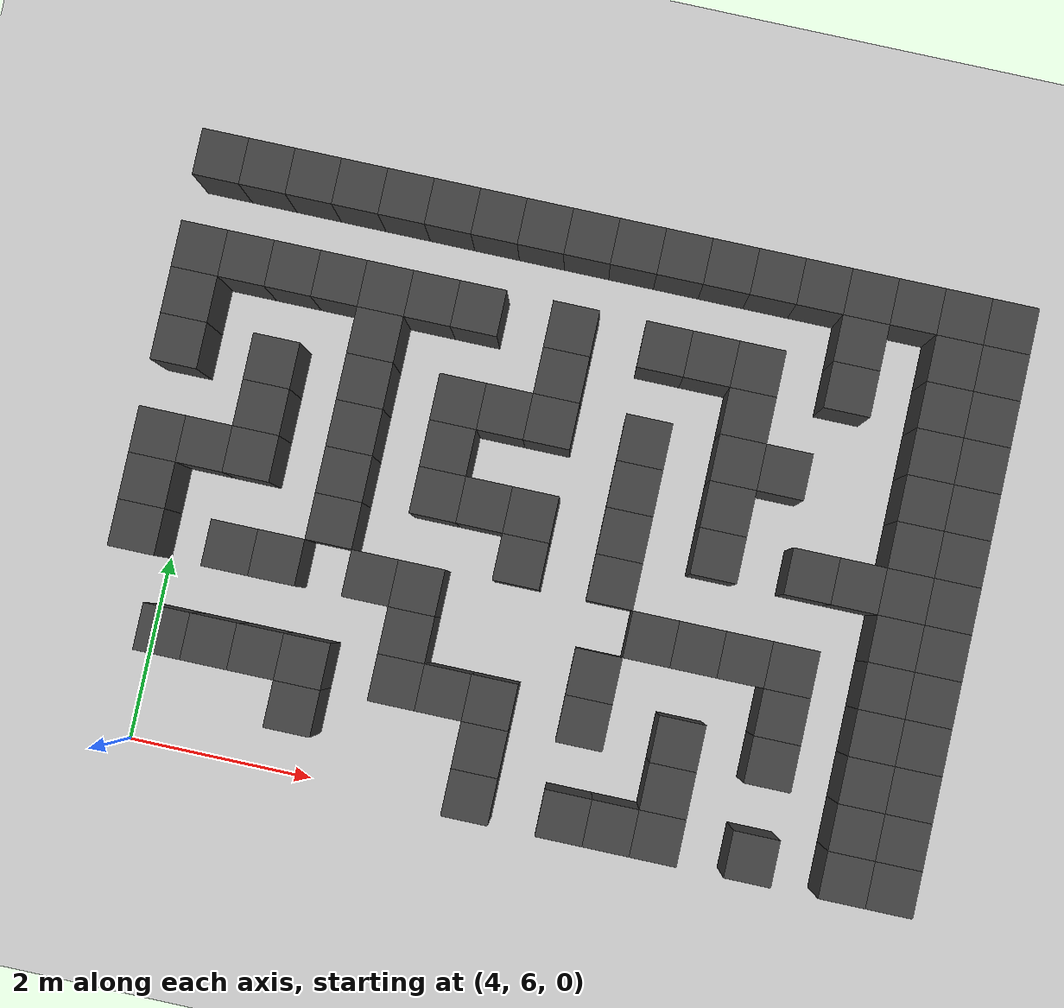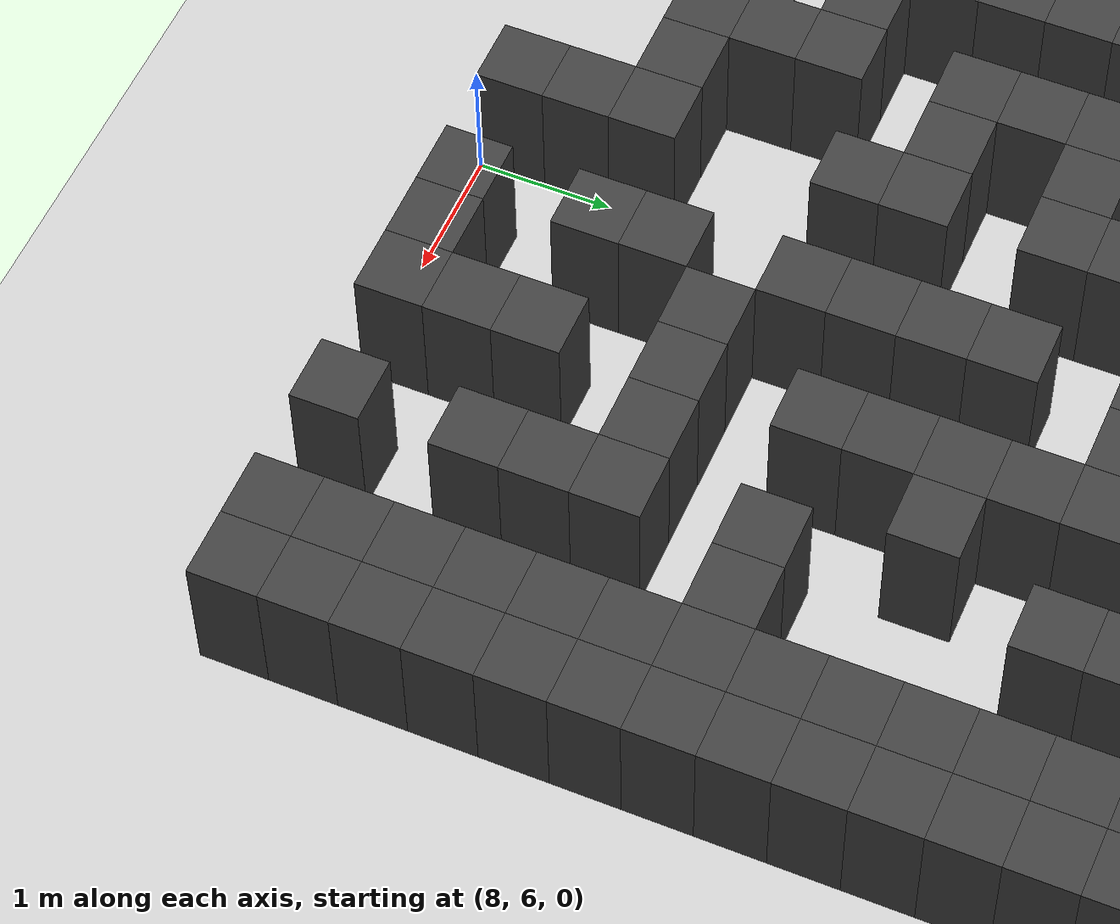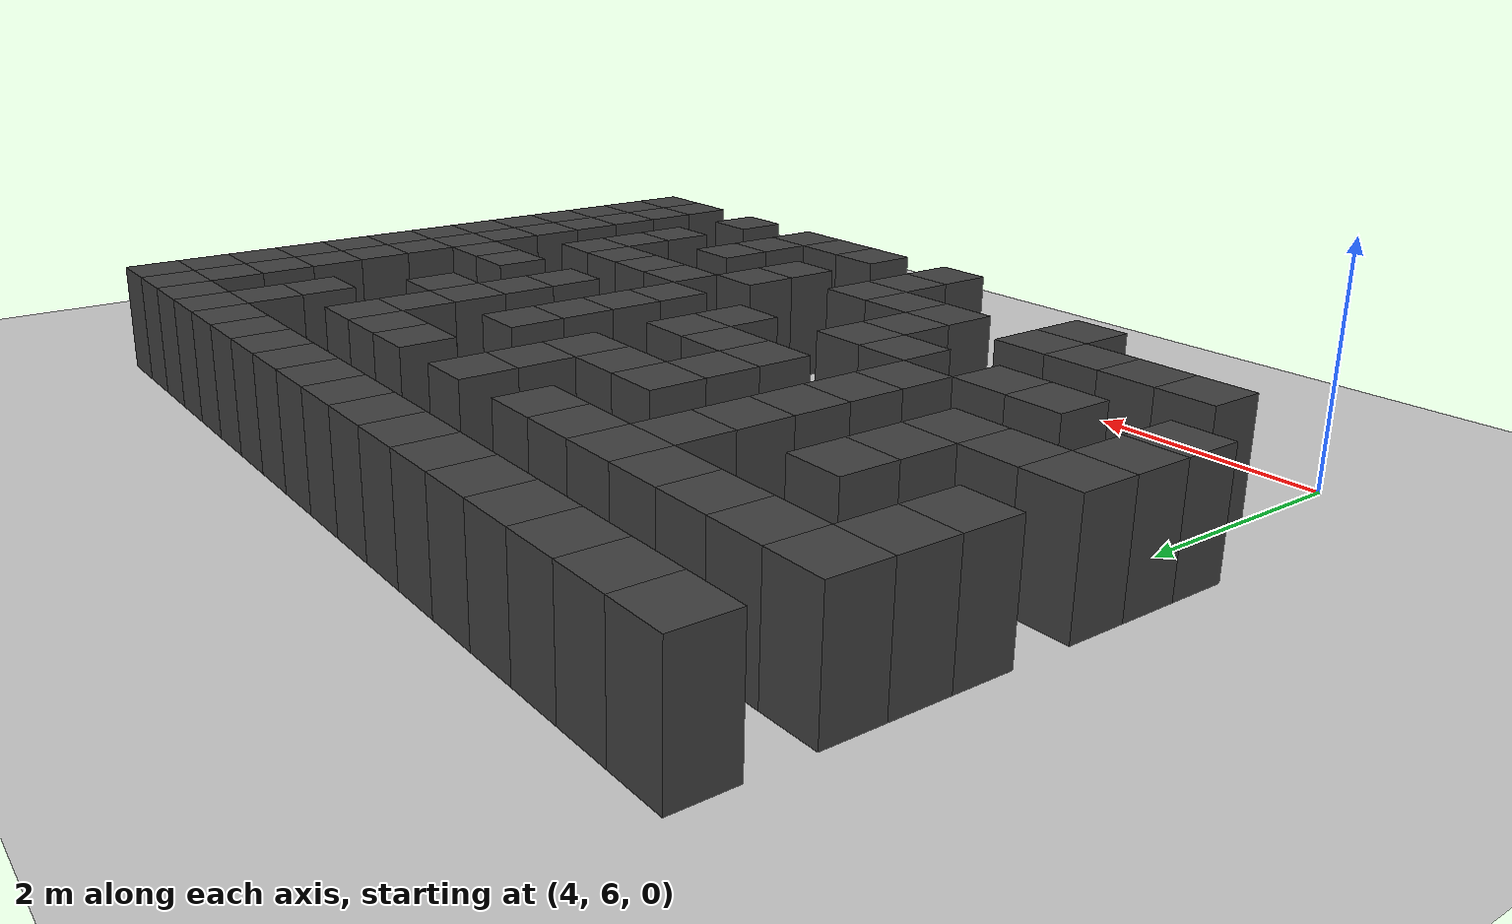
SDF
<sdf version="1.7">
 <world name="map_18553">
  <model name="ground_plane">
   <static>true</static>
   <link name="link">
    <collision name="collision">
     <geometry><plane><normal>0 0 1</normal><size>200 200</size></plane></geometry>
    </collision>
    <visual name="visual">
     <geometry><plane><normal>0 0 1</normal><size>200 200</size></plane></geometry>
     <material><ambient>0.8 0.8 0.8 1</ambient><diffuse>0.8 0.8 0.8 1</diffuse></material>
    </visual>
   </link>
  </model>
  <model name="maze_environment">
   <static>true</static>
   <link name="wall_32">
    <pose>3.750 12.250 0.500 0 0 0</pose>
    <collision name="col"><geometry><box><size>0.5 0.5 1.0</size></box></geometry></collision>
    <visual name="vis">
     <geometry><box><size>0.5 0.5 1.0</size></box></geometry>
     <material><ambient>0.15 0.15 0.15 1</ambient><diffuse>0.25 0.25 0.25 1</diffuse></material>
    </visual>
   </link>
   <link name="wall_33">
    <pose>4.250 12.250 0.500 0 0 0</pose>
    <collision name="col"><geometry><box><size>0.5 0.5 1.0</size></box></geometry></collision>
    <visual name="vis">
     <geometry><box><size>0.5 0.5 1.0</size></box></geometry>
     <material><ambient>0.15 0.15 0.15 1</ambient><diffuse>0.25 0.25 0.25 1</diffuse></material>
    </visual>
   </link>
   <link name="wall_34">
    <pose>4.750 12.250 0.500 0 0 0</pose>
    <collision name="col"><geometry><box><size>0.5 0.5 1.0</size></box></geometry></collision>
    <visual name="vis">
     <geometry><box><size>0.5 0.5 1.0</size></box></geometry>
     <material><ambient>0.15 0.15 0.15 1</ambient><diffuse>0.25 0.25 0.25 1</diffuse></material>
    </visual>
   </link>
   <link name="wall_35">
    <pose>5.250 12.250 0.500 0 0 0</pose>
    <collision name="col"><geometry><box><size>0.5 0.5 1.0</size></box></geometry></collision>
    <visual name="vis">
     <geometry><box><size>0.5 0.5 1.0</size></box></geometry>
     <material><ambient>0.15 0.15 0.15 1</ambient><diffuse>0.25 0.25 0.25 1</diffuse></material>
    </visual>
   </link>
   <link name="wall_36">
    <pose>5.750 12.250 0.500 0 0 0</pose>
    <collision name="col"><geometry><box><size>0.5 0.5 1.0</size></box></geometry></collision>
    <visual name="vis">
     <geometry><box><size>0.5 0.5 1.0</size></box></geometry>
     <material><ambient>0.15 0.15 0.15 1</ambient><diffuse>0.25 0.25 0.25 1</diffuse></material>
    </visual>
   </link>
   <link name="wall_37">
    <pose>6.250 12.250 0.500 0 0 0</pose>
    <collision name="col"><geometry><box><size>0.5 0.5 1.0</size></box></geometry></collision>
    <visual name="vis">
     <geometry><box><size>0.5 0.5 1.0</size></box></geometry>
     <material><ambient>0.15 0.15 0.15 1</ambient><diffuse>0.25 0.25 0.25 1</diffuse></material>
    </visual>
   </link>
   <link name="wall_38">
    <pose>6.750 12.250 0.500 0 0 0</pose>
    <collision name="col"><geometry><box><size>0.5 0.5 1.0</size></box></geometry></collision>
    <visual name="vis">
     <geometry><box><size>0.5 0.5 1.0</size></box></geometry>
     <material><ambient>0.15 0.15 0.15 1</ambient><diffuse>0.25 0.25 0.25 1</diffuse></material>
    </visual>
   </link>
   <link name="wall_39">
    <pose>7.250 12.250 0.500 0 0 0</pose>
    <collision name="col"><geometry><box><size>0.5 0.5 1.0</size></box></geometry></collision>
    <visual name="vis">
     <geometry><box><size>0.5 0.5 1.0</size></box></geometry>
     <material><ambient>0.15 0.15 0.15 1</ambient><diffuse>0.25 0.25 0.25 1</diffuse></material>
    </visual>
   </link>
   <link name="wall_40">
    <pose>7.750 12.250 0.500 0 0 0</pose>
    <collision name="col"><geometry><box><size>0.5 0.5 1.0</size></box></geometry></collision>
    <visual name="vis">
     <geometry><box><size>0.5 0.5 1.0</size></box></geometry>
     <material><ambient>0.15 0.15 0.15 1</ambient><diffuse>0.25 0.25 0.25 1</diffuse></material>
    </visual>
   </link>
   <link name="wall_41">
    <pose>8.250 12.250 0.500 0 0 0</pose>
    <collision name="col"><geometry><box><size>0.5 0.5 1.0</size></box></geometry></collision>
    <visual name="vis">
     <geometry><box><size>0.5 0.5 1.0</size></box></geometry>
     <material><ambient>0.15 0.15 0.15 1</ambient><diffuse>0.25 0.25 0.25 1</diffuse></material>
    </visual>
   </link>
   <link name="wall_42">
    <pose>8.750 12.250 0.500 0 0 0</pose>
    <collision name="col"><geometry><box><size>0.5 0.5 1.0</size></box></geometry></collision>
    <visual name="vis">
     <geometry><box><size>0.5 0.5 1.0</size></box></geometry>
     <material><ambient>0.15 0.15 0.15 1</ambient><diffuse>0.25 0.25 0.25 1</diffuse></material>
    </visual>
   </link>
   <link name="wall_43">
    <pose>9.250 12.250 0.500 0 0 0</pose>
    <collision name="col"><geometry><box><size>0.5 0.5 1.0</size></box></geometry></collision>
    <visual name="vis">
     <geometry><box><size>0.5 0.5 1.0</size></box></geometry>
     <material><ambient>0.15 0.15 0.15 1</ambient><diffuse>0.25 0.25 0.25 1</diffuse></material>
    </visual>
   </link>
   <link name="wall_44">
    <pose>9.750 12.250 0.500 0 0 0</pose>
    <collision name="col"><geometry><box><size>0.5 0.5 1.0</size></box></geometry></collision>
    <visual name="vis">
     <geometry><box><size>0.5 0.5 1.0</size></box></geometry>
     <material><ambient>0.15 0.15 0.15 1</ambient><diffuse>0.25 0.25 0.25 1</diffuse></material>
    </visual>
   </link>
   <link name="wall_45">
    <pose>10.250 12.250 0.500 0 0 0</pose>
    <collision name="col"><geometry><box><size>0.5 0.5 1.0</size></box></geometry></collision>
    <visual name="vis">
     <geometry><box><size>0.5 0.5 1.0</size></box></geometry>
     <material><ambient>0.15 0.15 0.15 1</ambient><diffuse>0.25 0.25 0.25 1</diffuse></material>
    </visual>
   </link>
   <link name="wall_46">
    <pose>10.750 12.250 0.500 0 0 0</pose>
    <collision name="col"><geometry><box><size>0.5 0.5 1.0</size></box></geometry></collision>
    <visual name="vis">
     <geometry><box><size>0.5 0.5 1.0</size></box></geometry>
     <material><ambient>0.15 0.15 0.15 1</ambient><diffuse>0.25 0.25 0.25 1</diffuse></material>
    </visual>
   </link>
   <link name="wall_47">
    <pose>11.250 12.250 0.500 0 0 0</pose>
    <collision name="col"><geometry><box><size>0.5 0.5 1.0</size></box></geometry></collision>
    <visual name="vis">
     <geometry><box><size>0.5 0.5 1.0</size></box></geometry>
     <material><ambient>0.15 0.15 0.15 1</ambient><diffuse>0.25 0.25 0.25 1</diffuse></material>
    </visual>
   </link>
   <link name="wall_48">
    <pose>11.750 12.250 0.500 0 0 0</pose>
    <collision name="col"><geometry><box><size>0.5 0.5 1.0</size></box></geometry></collision>
    <visual name="vis">
     <geometry><box><size>0.5 0.5 1.0</size></box></geometry>
     <material><ambient>0.15 0.15 0.15 1</ambient><diffuse>0.25 0.25 0.25 1</diffuse></material>
    </visual>
   </link>
   <link name="wall_49">
    <pose>12.250 12.250 0.500 0 0 0</pose>
    <collision name="col"><geometry><box><size>0.5 0.5 1.0</size></box></geometry></collision>
    <visual name="vis">
     <geometry><box><size>0.5 0.5 1.0</size></box></geometry>
     <material><ambient>0.15 0.15 0.15 1</ambient><diffuse>0.25 0.25 0.25 1</diffuse></material>
    </visual>
   </link>
   <link name="wall_55">
    <pose>10.750 11.750 0.500 0 0 0</pose>
    <collision name="col"><geometry><box><size>0.5 0.5 1.0</size></box></geometry></collision>
    <visual name="vis">
     <geometry><box><size>0.5 0.5 1.0</size></box></geometry>
     <material><ambient>0.15 0.15 0.15 1</ambient><diffuse>0.25 0.25 0.25 1</diffuse></material>
    </visual>
   </link>
   <link name="wall_56">
    <pose>11.750 11.750 0.500 0 0 0</pose>
    <collision name="col"><geometry><box><size>0.5 0.5 1.0</size></box></geometry></collision>
    <visual name="vis">
     <geometry><box><size>0.5 0.5 1.0</size></box></geometry>
     <material><ambient>0.15 0.15 0.15 1</ambient><diffuse>0.25 0.25 0.25 1</diffuse></material>
    </visual>
   </link>
   <link name="wall_57">
    <pose>12.250 11.750 0.500 0 0 0</pose>
    <collision name="col"><geometry><box><size>0.5 0.5 1.0</size></box></geometry></collision>
    <visual name="vis">
     <geometry><box><size>0.5 0.5 1.0</size></box></geometry>
     <material><ambient>0.15 0.15 0.15 1</ambient><diffuse>0.25 0.25 0.25 1</diffuse></material>
    </visual>
   </link>
   <link name="wall_79">
    <pose>3.750 11.250 0.500 0 0 0</pose>
    <collision name="col"><geometry><box><size>0.5 0.5 1.0</size></box></geometry></collision>
    <visual name="vis">
     <geometry><box><size>0.5 0.5 1.0</size></box></geometry>
     <material><ambient>0.15 0.15 0.15 1</ambient><diffuse>0.25 0.25 0.25 1</diffuse></material>
    </visual>
   </link>
   <link name="wall_80">
    <pose>4.250 11.250 0.500 0 0 0</pose>
    <collision name="col"><geometry><box><size>0.5 0.5 1.0</size></box></geometry></collision>
    <visual name="vis">
     <geometry><box><size>0.5 0.5 1.0</size></box></geometry>
     <material><ambient>0.15 0.15 0.15 1</ambient><diffuse>0.25 0.25 0.25 1</diffuse></material>
    </visual>
   </link>
   <link name="wall_81">
    <pose>4.750 11.250 0.500 0 0 0</pose>
    <collision name="col"><geometry><box><size>0.5 0.5 1.0</size></box></geometry></collision>
    <visual name="vis">
     <geometry><box><size>0.5 0.5 1.0</size></box></geometry>
     <material><ambient>0.15 0.15 0.15 1</ambient><diffuse>0.25 0.25 0.25 1</diffuse></material>
    </visual>
   </link>
   <link name="wall_82">
    <pose>5.250 11.250 0.500 0 0 0</pose>
    <collision name="col"><geometry><box><size>0.5 0.5 1.0</size></box></geometry></collision>
    <visual name="vis">
     <geometry><box><size>0.5 0.5 1.0</size></box></geometry>
     <material><ambient>0.15 0.15 0.15 1</ambient><diffuse>0.25 0.25 0.25 1</diffuse></material>
    </visual>
   </link>
   <link name="wall_83">
    <pose>5.750 11.250 0.500 0 0 0</pose>
    <collision name="col"><geometry><box><size>0.5 0.5 1.0</size></box></geometry></collision>
    <visual name="vis">
     <geometry><box><size>0.5 0.5 1.0</size></box></geometry>
     <material><ambient>0.15 0.15 0.15 1</ambient><diffuse>0.25 0.25 0.25 1</diffuse></material>
    </visual>
   </link>
   <link name="wall_84">
    <pose>6.250 11.250 0.500 0 0 0</pose>
    <collision name="col"><geometry><box><size>0.5 0.5 1.0</size></box></geometry></collision>
    <visual name="vis">
     <geometry><box><size>0.5 0.5 1.0</size></box></geometry>
     <material><ambient>0.15 0.15 0.15 1</ambient><diffuse>0.25 0.25 0.25 1</diffuse></material>
    </visual>
   </link>
   <link name="wall_85">
    <pose>6.750 11.250 0.500 0 0 0</pose>
    <collision name="col"><geometry><box><size>0.5 0.5 1.0</size></box></geometry></collision>
    <visual name="vis">
     <geometry><box><size>0.5 0.5 1.0</size></box></geometry>
     <material><ambient>0.15 0.15 0.15 1</ambient><diffuse>0.25 0.25 0.25 1</diffuse></material>
    </visual>
   </link>
   <link name="wall_86">
    <pose>7.750 11.250 0.500 0 0 0</pose>
    <collision name="col"><geometry><box><size>0.5 0.5 1.0</size></box></geometry></collision>
    <visual name="vis">
     <geometry><box><size>0.5 0.5 1.0</size></box></geometry>
     <material><ambient>0.15 0.15 0.15 1</ambient><diffuse>0.25 0.25 0.25 1</diffuse></material>
    </visual>
   </link>
   <link name="wall_87">
    <pose>8.750 11.250 0.500 0 0 0</pose>
    <collision name="col"><geometry><box><size>0.5 0.5 1.0</size></box></geometry></collision>
    <visual name="vis">
     <geometry><box><size>0.5 0.5 1.0</size></box></geometry>
     <material><ambient>0.15 0.15 0.15 1</ambient><diffuse>0.25 0.25 0.25 1</diffuse></material>
    </visual>
   </link>
   <link name="wall_88">
    <pose>9.250 11.250 0.500 0 0 0</pose>
    <collision name="col"><geometry><box><size>0.5 0.5 1.0</size></box></geometry></collision>
    <visual name="vis">
     <geometry><box><size>0.5 0.5 1.0</size></box></geometry>
     <material><ambient>0.15 0.15 0.15 1</ambient><diffuse>0.25 0.25 0.25 1</diffuse></material>
    </visual>
   </link>
   <link name="wall_89">
    <pose>9.750 11.250 0.500 0 0 0</pose>
    <collision name="col"><geometry><box><size>0.5 0.5 1.0</size></box></geometry></collision>
    <visual name="vis">
     <geometry><box><size>0.5 0.5 1.0</size></box></geometry>
     <material><ambient>0.15 0.15 0.15 1</ambient><diffuse>0.25 0.25 0.25 1</diffuse></material>
    </visual>
   </link>
   <link name="wall_90">
    <pose>10.750 11.250 0.500 0 0 0</pose>
    <collision name="col"><geometry><box><size>0.5 0.5 1.0</size></box></geometry></collision>
    <visual name="vis">
     <geometry><box><size>0.5 0.5 1.0</size></box></geometry>
     <material><ambient>0.15 0.15 0.15 1</ambient><diffuse>0.25 0.25 0.25 1</diffuse></material>
    </visual>
   </link>
   <link name="wall_91">
    <pose>11.750 11.250 0.500 0 0 0</pose>
    <collision name="col"><geometry><box><size>0.5 0.5 1.0</size></box></geometry></collision>
    <visual name="vis">
     <geometry><box><size>0.5 0.5 1.0</size></box></geometry>
     <material><ambient>0.15 0.15 0.15 1</ambient><diffuse>0.25 0.25 0.25 1</diffuse></material>
    </visual>
   </link>
   <link name="wall_92">
    <pose>12.250 11.250 0.500 0 0 0</pose>
    <collision name="col"><geometry><box><size>0.5 0.5 1.0</size></box></geometry></collision>
    <visual name="vis">
     <geometry><box><size>0.5 0.5 1.0</size></box></geometry>
     <material><ambient>0.15 0.15 0.15 1</ambient><diffuse>0.25 0.25 0.25 1</diffuse></material>
    </visual>
   </link>
   <link name="wall_103">
    <pose>3.750 10.750 0.500 0 0 0</pose>
    <collision name="col"><geometry><box><size>0.5 0.5 1.0</size></box></geometry></collision>
    <visual name="vis">
     <geometry><box><size>0.5 0.5 1.0</size></box></geometry>
     <material><ambient>0.15 0.15 0.15 1</ambient><diffuse>0.25 0.25 0.25 1</diffuse></material>
    </visual>
   </link>
   <link name="wall_104">
    <pose>5.750 10.750 0.500 0 0 0</pose>
    <collision name="col"><geometry><box><size>0.5 0.5 1.0</size></box></geometry></collision>
    <visual name="vis">
     <geometry><box><size>0.5 0.5 1.0</size></box></geometry>
     <material><ambient>0.15 0.15 0.15 1</ambient><diffuse>0.25 0.25 0.25 1</diffuse></material>
    </visual>
   </link>
   <link name="wall_105">
    <pose>7.750 10.750 0.500 0 0 0</pose>
    <collision name="col"><geometry><box><size>0.5 0.5 1.0</size></box></geometry></collision>
    <visual name="vis">
     <geometry><box><size>0.5 0.5 1.0</size></box></geometry>
     <material><ambient>0.15 0.15 0.15 1</ambient><diffuse>0.25 0.25 0.25 1</diffuse></material>
    </visual>
   </link>
   <link name="wall_106">
    <pose>9.750 10.750 0.500 0 0 0</pose>
    <collision name="col"><geometry><box><size>0.5 0.5 1.0</size></box></geometry></collision>
    <visual name="vis">
     <geometry><box><size>0.5 0.5 1.0</size></box></geometry>
     <material><ambient>0.15 0.15 0.15 1</ambient><diffuse>0.25 0.25 0.25 1</diffuse></material>
    </visual>
   </link>
   <link name="wall_107">
    <pose>11.750 10.750 0.500 0 0 0</pose>
    <collision name="col"><geometry><box><size>0.5 0.5 1.0</size></box></geometry></collision>
    <visual name="vis">
     <geometry><box><size>0.5 0.5 1.0</size></box></geometry>
     <material><ambient>0.15 0.15 0.15 1</ambient><diffuse>0.25 0.25 0.25 1</diffuse></material>
    </visual>
   </link>
   <link name="wall_108">
    <pose>12.250 10.750 0.500 0 0 0</pose>
    <collision name="col"><geometry><box><size>0.5 0.5 1.0</size></box></geometry></collision>
    <visual name="vis">
     <geometry><box><size>0.5 0.5 1.0</size></box></geometry>
     <material><ambient>0.15 0.15 0.15 1</ambient><diffuse>0.25 0.25 0.25 1</diffuse></material>
    </visual>
   </link>
   <link name="wall_131">
    <pose>3.750 10.250 0.500 0 0 0</pose>
    <collision name="col"><geometry><box><size>0.5 0.5 1.0</size></box></geometry></collision>
    <visual name="vis">
     <geometry><box><size>0.5 0.5 1.0</size></box></geometry>
     <material><ambient>0.15 0.15 0.15 1</ambient><diffuse>0.25 0.25 0.25 1</diffuse></material>
    </visual>
   </link>
   <link name="wall_132">
    <pose>4.750 10.250 0.500 0 0 0</pose>
    <collision name="col"><geometry><box><size>0.5 0.5 1.0</size></box></geometry></collision>
    <visual name="vis">
     <geometry><box><size>0.5 0.5 1.0</size></box></geometry>
     <material><ambient>0.15 0.15 0.15 1</ambient><diffuse>0.25 0.25 0.25 1</diffuse></material>
    </visual>
   </link>
   <link name="wall_133">
    <pose>5.750 10.250 0.500 0 0 0</pose>
    <collision name="col"><geometry><box><size>0.5 0.5 1.0</size></box></geometry></collision>
    <visual name="vis">
     <geometry><box><size>0.5 0.5 1.0</size></box></geometry>
     <material><ambient>0.15 0.15 0.15 1</ambient><diffuse>0.25 0.25 0.25 1</diffuse></material>
    </visual>
   </link>
   <link name="wall_134">
    <pose>6.750 10.250 0.500 0 0 0</pose>
    <collision name="col"><geometry><box><size>0.5 0.5 1.0</size></box></geometry></collision>
    <visual name="vis">
     <geometry><box><size>0.5 0.5 1.0</size></box></geometry>
     <material><ambient>0.15 0.15 0.15 1</ambient><diffuse>0.25 0.25 0.25 1</diffuse></material>
    </visual>
   </link>
   <link name="wall_135">
    <pose>7.250 10.250 0.500 0 0 0</pose>
    <collision name="col"><geometry><box><size>0.5 0.5 1.0</size></box></geometry></collision>
    <visual name="vis">
     <geometry><box><size>0.5 0.5 1.0</size></box></geometry>
     <material><ambient>0.15 0.15 0.15 1</ambient><diffuse>0.25 0.25 0.25 1</diffuse></material>
    </visual>
   </link>
   <link name="wall_136">
    <pose>7.750 10.250 0.500 0 0 0</pose>
    <collision name="col"><geometry><box><size>0.5 0.5 1.0</size></box></geometry></collision>
    <visual name="vis">
     <geometry><box><size>0.5 0.5 1.0</size></box></geometry>
     <material><ambient>0.15 0.15 0.15 1</ambient><diffuse>0.25 0.25 0.25 1</diffuse></material>
    </visual>
   </link>
   <link name="wall_137">
    <pose>8.750 10.250 0.500 0 0 0</pose>
    <collision name="col"><geometry><box><size>0.5 0.5 1.0</size></box></geometry></collision>
    <visual name="vis">
     <geometry><box><size>0.5 0.5 1.0</size></box></geometry>
     <material><ambient>0.15 0.15 0.15 1</ambient><diffuse>0.25 0.25 0.25 1</diffuse></material>
    </visual>
   </link>
   <link name="wall_138">
    <pose>9.750 10.250 0.500 0 0 0</pose>
    <collision name="col"><geometry><box><size>0.5 0.5 1.0</size></box></geometry></collision>
    <visual name="vis">
     <geometry><box><size>0.5 0.5 1.0</size></box></geometry>
     <material><ambient>0.15 0.15 0.15 1</ambient><diffuse>0.25 0.25 0.25 1</diffuse></material>
    </visual>
   </link>
   <link name="wall_139">
    <pose>10.250 10.250 0.500 0 0 0</pose>
    <collision name="col"><geometry><box><size>0.5 0.5 1.0</size></box></geometry></collision>
    <visual name="vis">
     <geometry><box><size>0.5 0.5 1.0</size></box></geometry>
     <material><ambient>0.15 0.15 0.15 1</ambient><diffuse>0.25 0.25 0.25 1</diffuse></material>
    </visual>
   </link>
   <link name="wall_140">
    <pose>11.750 10.250 0.500 0 0 0</pose>
    <collision name="col"><geometry><box><size>0.5 0.5 1.0</size></box></geometry></collision>
    <visual name="vis">
     <geometry><box><size>0.5 0.5 1.0</size></box></geometry>
     <material><ambient>0.15 0.15 0.15 1</ambient><diffuse>0.25 0.25 0.25 1</diffuse></material>
    </visual>
   </link>
   <link name="wall_141">
    <pose>12.250 10.250 0.500 0 0 0</pose>
    <collision name="col"><geometry><box><size>0.5 0.5 1.0</size></box></geometry></collision>
    <visual name="vis">
     <geometry><box><size>0.5 0.5 1.0</size></box></geometry>
     <material><ambient>0.15 0.15 0.15 1</ambient><diffuse>0.25 0.25 0.25 1</diffuse></material>
    </visual>
   </link>
   <link name="wall_155">
    <pose>4.750 9.750 0.500 0 0 0</pose>
    <collision name="col"><geometry><box><size>0.5 0.5 1.0</size></box></geometry></collision>
    <visual name="vis">
     <geometry><box><size>0.5 0.5 1.0</size></box></geometry>
     <material><ambient>0.15 0.15 0.15 1</ambient><diffuse>0.25 0.25 0.25 1</diffuse></material>
    </visual>
   </link>
   <link name="wall_156">
    <pose>5.750 9.750 0.500 0 0 0</pose>
    <collision name="col"><geometry><box><size>0.5 0.5 1.0</size></box></geometry></collision>
    <visual name="vis">
     <geometry><box><size>0.5 0.5 1.0</size></box></geometry>
     <material><ambient>0.15 0.15 0.15 1</ambient><diffuse>0.25 0.25 0.25 1</diffuse></material>
    </visual>
   </link>
   <link name="wall_157">
    <pose>6.750 9.750 0.500 0 0 0</pose>
    <collision name="col"><geometry><box><size>0.5 0.5 1.0</size></box></geometry></collision>
    <visual name="vis">
     <geometry><box><size>0.5 0.5 1.0</size></box></geometry>
     <material><ambient>0.15 0.15 0.15 1</ambient><diffuse>0.25 0.25 0.25 1</diffuse></material>
    </visual>
   </link>
   <link name="wall_158">
    <pose>8.750 9.750 0.500 0 0 0</pose>
    <collision name="col"><geometry><box><size>0.5 0.5 1.0</size></box></geometry></collision>
    <visual name="vis">
     <geometry><box><size>0.5 0.5 1.0</size></box></geometry>
     <material><ambient>0.15 0.15 0.15 1</ambient><diffuse>0.25 0.25 0.25 1</diffuse></material>
    </visual>
   </link>
   <link name="wall_159">
    <pose>9.750 9.750 0.500 0 0 0</pose>
    <collision name="col"><geometry><box><size>0.5 0.5 1.0</size></box></geometry></collision>
    <visual name="vis">
     <geometry><box><size>0.5 0.5 1.0</size></box></geometry>
     <material><ambient>0.15 0.15 0.15 1</ambient><diffuse>0.25 0.25 0.25 1</diffuse></material>
    </visual>
   </link>
   <link name="wall_160">
    <pose>11.750 9.750 0.500 0 0 0</pose>
    <collision name="col"><geometry><box><size>0.5 0.5 1.0</size></box></geometry></collision>
    <visual name="vis">
     <geometry><box><size>0.5 0.5 1.0</size></box></geometry>
     <material><ambient>0.15 0.15 0.15 1</ambient><diffuse>0.25 0.25 0.25 1</diffuse></material>
    </visual>
   </link>
   <link name="wall_161">
    <pose>12.250 9.750 0.500 0 0 0</pose>
    <collision name="col"><geometry><box><size>0.5 0.5 1.0</size></box></geometry></collision>
    <visual name="vis">
     <geometry><box><size>0.5 0.5 1.0</size></box></geometry>
     <material><ambient>0.15 0.15 0.15 1</ambient><diffuse>0.25 0.25 0.25 1</diffuse></material>
    </visual>
   </link>
   <link name="wall_182">
    <pose>3.750 9.250 0.500 0 0 0</pose>
    <collision name="col"><geometry><box><size>0.5 0.5 1.0</size></box></geometry></collision>
    <visual name="vis">
     <geometry><box><size>0.5 0.5 1.0</size></box></geometry>
     <material><ambient>0.15 0.15 0.15 1</ambient><diffuse>0.25 0.25 0.25 1</diffuse></material>
    </visual>
   </link>
   <link name="wall_183">
    <pose>4.250 9.250 0.500 0 0 0</pose>
    <collision name="col"><geometry><box><size>0.5 0.5 1.0</size></box></geometry></collision>
    <visual name="vis">
     <geometry><box><size>0.5 0.5 1.0</size></box></geometry>
     <material><ambient>0.15 0.15 0.15 1</ambient><diffuse>0.25 0.25 0.25 1</diffuse></material>
    </visual>
   </link>
   <link name="wall_184">
    <pose>4.750 9.250 0.500 0 0 0</pose>
    <collision name="col"><geometry><box><size>0.5 0.5 1.0</size></box></geometry></collision>
    <visual name="vis">
     <geometry><box><size>0.5 0.5 1.0</size></box></geometry>
     <material><ambient>0.15 0.15 0.15 1</ambient><diffuse>0.25 0.25 0.25 1</diffuse></material>
    </visual>
   </link>
   <link name="wall_185">
    <pose>5.750 9.250 0.500 0 0 0</pose>
    <collision name="col"><geometry><box><size>0.5 0.5 1.0</size></box></geometry></collision>
    <visual name="vis">
     <geometry><box><size>0.5 0.5 1.0</size></box></geometry>
     <material><ambient>0.15 0.15 0.15 1</ambient><diffuse>0.25 0.25 0.25 1</diffuse></material>
    </visual>
   </link>
   <link name="wall_186">
    <pose>6.750 9.250 0.500 0 0 0</pose>
    <collision name="col"><geometry><box><size>0.5 0.5 1.0</size></box></geometry></collision>
    <visual name="vis">
     <geometry><box><size>0.5 0.5 1.0</size></box></geometry>
     <material><ambient>0.15 0.15 0.15 1</ambient><diffuse>0.25 0.25 0.25 1</diffuse></material>
    </visual>
   </link>
   <link name="wall_187">
    <pose>7.250 9.250 0.500 0 0 0</pose>
    <collision name="col"><geometry><box><size>0.5 0.5 1.0</size></box></geometry></collision>
    <visual name="vis">
     <geometry><box><size>0.5 0.5 1.0</size></box></geometry>
     <material><ambient>0.15 0.15 0.15 1</ambient><diffuse>0.25 0.25 0.25 1</diffuse></material>
    </visual>
   </link>
   <link name="wall_188">
    <pose>7.750 9.250 0.500 0 0 0</pose>
    <collision name="col"><geometry><box><size>0.5 0.5 1.0</size></box></geometry></collision>
    <visual name="vis">
     <geometry><box><size>0.5 0.5 1.0</size></box></geometry>
     <material><ambient>0.15 0.15 0.15 1</ambient><diffuse>0.25 0.25 0.25 1</diffuse></material>
    </visual>
   </link>
   <link name="wall_189">
    <pose>8.750 9.250 0.500 0 0 0</pose>
    <collision name="col"><geometry><box><size>0.5 0.5 1.0</size></box></geometry></collision>
    <visual name="vis">
     <geometry><box><size>0.5 0.5 1.0</size></box></geometry>
     <material><ambient>0.15 0.15 0.15 1</ambient><diffuse>0.25 0.25 0.25 1</diffuse></material>
    </visual>
   </link>
   <link name="wall_190">
    <pose>9.750 9.250 0.500 0 0 0</pose>
    <collision name="col"><geometry><box><size>0.5 0.5 1.0</size></box></geometry></collision>
    <visual name="vis">
     <geometry><box><size>0.5 0.5 1.0</size></box></geometry>
     <material><ambient>0.15 0.15 0.15 1</ambient><diffuse>0.25 0.25 0.25 1</diffuse></material>
    </visual>
   </link>
   <link name="wall_191">
    <pose>10.750 9.250 0.500 0 0 0</pose>
    <collision name="col"><geometry><box><size>0.5 0.5 1.0</size></box></geometry></collision>
    <visual name="vis">
     <geometry><box><size>0.5 0.5 1.0</size></box></geometry>
     <material><ambient>0.15 0.15 0.15 1</ambient><diffuse>0.25 0.25 0.25 1</diffuse></material>
    </visual>
   </link>
   <link name="wall_192">
    <pose>11.250 9.250 0.500 0 0 0</pose>
    <collision name="col"><geometry><box><size>0.5 0.5 1.0</size></box></geometry></collision>
    <visual name="vis">
     <geometry><box><size>0.5 0.5 1.0</size></box></geometry>
     <material><ambient>0.15 0.15 0.15 1</ambient><diffuse>0.25 0.25 0.25 1</diffuse></material>
    </visual>
   </link>
   <link name="wall_193">
    <pose>11.750 9.250 0.500 0 0 0</pose>
    <collision name="col"><geometry><box><size>0.5 0.5 1.0</size></box></geometry></collision>
    <visual name="vis">
     <geometry><box><size>0.5 0.5 1.0</size></box></geometry>
     <material><ambient>0.15 0.15 0.15 1</ambient><diffuse>0.25 0.25 0.25 1</diffuse></material>
    </visual>
   </link>
   <link name="wall_194">
    <pose>12.250 9.250 0.500 0 0 0</pose>
    <collision name="col"><geometry><box><size>0.5 0.5 1.0</size></box></geometry></collision>
    <visual name="vis">
     <geometry><box><size>0.5 0.5 1.0</size></box></geometry>
     <material><ambient>0.15 0.15 0.15 1</ambient><diffuse>0.25 0.25 0.25 1</diffuse></material>
    </visual>
   </link>
   <link name="wall_206">
    <pose>3.750 8.750 0.500 0 0 0</pose>
    <collision name="col"><geometry><box><size>0.5 0.5 1.0</size></box></geometry></collision>
    <visual name="vis">
     <geometry><box><size>0.5 0.5 1.0</size></box></geometry>
     <material><ambient>0.15 0.15 0.15 1</ambient><diffuse>0.25 0.25 0.25 1</diffuse></material>
    </visual>
   </link>
   <link name="wall_207">
    <pose>5.750 8.750 0.500 0 0 0</pose>
    <collision name="col"><geometry><box><size>0.5 0.5 1.0</size></box></geometry></collision>
    <visual name="vis">
     <geometry><box><size>0.5 0.5 1.0</size></box></geometry>
     <material><ambient>0.15 0.15 0.15 1</ambient><diffuse>0.25 0.25 0.25 1</diffuse></material>
    </visual>
   </link>
   <link name="wall_208">
    <pose>7.750 8.750 0.500 0 0 0</pose>
    <collision name="col"><geometry><box><size>0.5 0.5 1.0</size></box></geometry></collision>
    <visual name="vis">
     <geometry><box><size>0.5 0.5 1.0</size></box></geometry>
     <material><ambient>0.15 0.15 0.15 1</ambient><diffuse>0.25 0.25 0.25 1</diffuse></material>
    </visual>
   </link>
   <link name="wall_209">
    <pose>8.750 8.750 0.500 0 0 0</pose>
    <collision name="col"><geometry><box><size>0.5 0.5 1.0</size></box></geometry></collision>
    <visual name="vis">
     <geometry><box><size>0.5 0.5 1.0</size></box></geometry>
     <material><ambient>0.15 0.15 0.15 1</ambient><diffuse>0.25 0.25 0.25 1</diffuse></material>
    </visual>
   </link>
   <link name="wall_210">
    <pose>11.750 8.750 0.500 0 0 0</pose>
    <collision name="col"><geometry><box><size>0.5 0.5 1.0</size></box></geometry></collision>
    <visual name="vis">
     <geometry><box><size>0.5 0.5 1.0</size></box></geometry>
     <material><ambient>0.15 0.15 0.15 1</ambient><diffuse>0.25 0.25 0.25 1</diffuse></material>
    </visual>
   </link>
   <link name="wall_211">
    <pose>12.250 8.750 0.500 0 0 0</pose>
    <collision name="col"><geometry><box><size>0.5 0.5 1.0</size></box></geometry></collision>
    <visual name="vis">
     <geometry><box><size>0.5 0.5 1.0</size></box></geometry>
     <material><ambient>0.15 0.15 0.15 1</ambient><diffuse>0.25 0.25 0.25 1</diffuse></material>
    </visual>
   </link>
   <link name="wall_232">
    <pose>3.750 8.250 0.500 0 0 0</pose>
    <collision name="col"><geometry><box><size>0.5 0.5 1.0</size></box></geometry></collision>
    <visual name="vis">
     <geometry><box><size>0.5 0.5 1.0</size></box></geometry>
     <material><ambient>0.15 0.15 0.15 1</ambient><diffuse>0.25 0.25 0.25 1</diffuse></material>
    </visual>
   </link>
   <link name="wall_233">
    <pose>4.750 8.250 0.500 0 0 0</pose>
    <collision name="col"><geometry><box><size>0.5 0.5 1.0</size></box></geometry></collision>
    <visual name="vis">
     <geometry><box><size>0.5 0.5 1.0</size></box></geometry>
     <material><ambient>0.15 0.15 0.15 1</ambient><diffuse>0.25 0.25 0.25 1</diffuse></material>
    </visual>
   </link>
   <link name="wall_234">
    <pose>5.250 8.250 0.500 0 0 0</pose>
    <collision name="col"><geometry><box><size>0.5 0.5 1.0</size></box></geometry></collision>
    <visual name="vis">
     <geometry><box><size>0.5 0.5 1.0</size></box></geometry>
     <material><ambient>0.15 0.15 0.15 1</ambient><diffuse>0.25 0.25 0.25 1</diffuse></material>
    </visual>
   </link>
   <link name="wall_235">
    <pose>6.250 8.250 0.500 0 0 0</pose>
    <collision name="col"><geometry><box><size>0.5 0.5 1.0</size></box></geometry></collision>
    <visual name="vis">
     <geometry><box><size>0.5 0.5 1.0</size></box></geometry>
     <material><ambient>0.15 0.15 0.15 1</ambient><diffuse>0.25 0.25 0.25 1</diffuse></material>
    </visual>
   </link>
   <link name="wall_236">
    <pose>6.750 8.250 0.500 0 0 0</pose>
    <collision name="col"><geometry><box><size>0.5 0.5 1.0</size></box></geometry></collision>
    <visual name="vis">
     <geometry><box><size>0.5 0.5 1.0</size></box></geometry>
     <material><ambient>0.15 0.15 0.15 1</ambient><diffuse>0.25 0.25 0.25 1</diffuse></material>
    </visual>
   </link>
   <link name="wall_237">
    <pose>9.250 8.250 0.500 0 0 0</pose>
    <collision name="col"><geometry><box><size>0.5 0.5 1.0</size></box></geometry></collision>
    <visual name="vis">
     <geometry><box><size>0.5 0.5 1.0</size></box></geometry>
     <material><ambient>0.15 0.15 0.15 1</ambient><diffuse>0.25 0.25 0.25 1</diffuse></material>
    </visual>
   </link>
   <link name="wall_238">
    <pose>9.750 8.250 0.500 0 0 0</pose>
    <collision name="col"><geometry><box><size>0.5 0.5 1.0</size></box></geometry></collision>
    <visual name="vis">
     <geometry><box><size>0.5 0.5 1.0</size></box></geometry>
     <material><ambient>0.15 0.15 0.15 1</ambient><diffuse>0.25 0.25 0.25 1</diffuse></material>
    </visual>
   </link>
   <link name="wall_239">
    <pose>10.250 8.250 0.500 0 0 0</pose>
    <collision name="col"><geometry><box><size>0.5 0.5 1.0</size></box></geometry></collision>
    <visual name="vis">
     <geometry><box><size>0.5 0.5 1.0</size></box></geometry>
     <material><ambient>0.15 0.15 0.15 1</ambient><diffuse>0.25 0.25 0.25 1</diffuse></material>
    </visual>
   </link>
   <link name="wall_240">
    <pose>10.750 8.250 0.500 0 0 0</pose>
    <collision name="col"><geometry><box><size>0.5 0.5 1.0</size></box></geometry></collision>
    <visual name="vis">
     <geometry><box><size>0.5 0.5 1.0</size></box></geometry>
     <material><ambient>0.15 0.15 0.15 1</ambient><diffuse>0.25 0.25 0.25 1</diffuse></material>
    </visual>
   </link>
   <link name="wall_241">
    <pose>11.750 8.250 0.500 0 0 0</pose>
    <collision name="col"><geometry><box><size>0.5 0.5 1.0</size></box></geometry></collision>
    <visual name="vis">
     <geometry><box><size>0.5 0.5 1.0</size></box></geometry>
     <material><ambient>0.15 0.15 0.15 1</ambient><diffuse>0.25 0.25 0.25 1</diffuse></material>
    </visual>
   </link>
   <link name="wall_242">
    <pose>12.250 8.250 0.500 0 0 0</pose>
    <collision name="col"><geometry><box><size>0.5 0.5 1.0</size></box></geometry></collision>
    <visual name="vis">
     <geometry><box><size>0.5 0.5 1.0</size></box></geometry>
     <material><ambient>0.15 0.15 0.15 1</ambient><diffuse>0.25 0.25 0.25 1</diffuse></material>
    </visual>
   </link>
   <link name="wall_252">
    <pose>6.750 7.750 0.500 0 0 0</pose>
    <collision name="col"><geometry><box><size>0.5 0.5 1.0</size></box></geometry></collision>
    <visual name="vis">
     <geometry><box><size>0.5 0.5 1.0</size></box></geometry>
     <material><ambient>0.15 0.15 0.15 1</ambient><diffuse>0.25 0.25 0.25 1</diffuse></material>
    </visual>
   </link>
   <link name="wall_253">
    <pose>8.750 7.750 0.500 0 0 0</pose>
    <collision name="col"><geometry><box><size>0.5 0.5 1.0</size></box></geometry></collision>
    <visual name="vis">
     <geometry><box><size>0.5 0.5 1.0</size></box></geometry>
     <material><ambient>0.15 0.15 0.15 1</ambient><diffuse>0.25 0.25 0.25 1</diffuse></material>
    </visual>
   </link>
   <link name="wall_254">
    <pose>10.750 7.750 0.500 0 0 0</pose>
    <collision name="col"><geometry><box><size>0.5 0.5 1.0</size></box></geometry></collision>
    <visual name="vis">
     <geometry><box><size>0.5 0.5 1.0</size></box></geometry>
     <material><ambient>0.15 0.15 0.15 1</ambient><diffuse>0.25 0.25 0.25 1</diffuse></material>
    </visual>
   </link>
   <link name="wall_255">
    <pose>11.750 7.750 0.500 0 0 0</pose>
    <collision name="col"><geometry><box><size>0.5 0.5 1.0</size></box></geometry></collision>
    <visual name="vis">
     <geometry><box><size>0.5 0.5 1.0</size></box></geometry>
     <material><ambient>0.15 0.15 0.15 1</ambient><diffuse>0.25 0.25 0.25 1</diffuse></material>
    </visual>
   </link>
   <link name="wall_256">
    <pose>12.250 7.750 0.500 0 0 0</pose>
    <collision name="col"><geometry><box><size>0.5 0.5 1.0</size></box></geometry></collision>
    <visual name="vis">
     <geometry><box><size>0.5 0.5 1.0</size></box></geometry>
     <material><ambient>0.15 0.15 0.15 1</ambient><diffuse>0.25 0.25 0.25 1</diffuse></material>
    </visual>
   </link>
   <link name="wall_279">
    <pose>4.250 7.250 0.500 0 0 0</pose>
    <collision name="col"><geometry><box><size>0.5 0.5 1.0</size></box></geometry></collision>
    <visual name="vis">
     <geometry><box><size>0.5 0.5 1.0</size></box></geometry>
     <material><ambient>0.15 0.15 0.15 1</ambient><diffuse>0.25 0.25 0.25 1</diffuse></material>
    </visual>
   </link>
   <link name="wall_280">
    <pose>4.750 7.250 0.500 0 0 0</pose>
    <collision name="col"><geometry><box><size>0.5 0.5 1.0</size></box></geometry></collision>
    <visual name="vis">
     <geometry><box><size>0.5 0.5 1.0</size></box></geometry>
     <material><ambient>0.15 0.15 0.15 1</ambient><diffuse>0.25 0.25 0.25 1</diffuse></material>
    </visual>
   </link>
   <link name="wall_281">
    <pose>5.250 7.250 0.500 0 0 0</pose>
    <collision name="col"><geometry><box><size>0.5 0.5 1.0</size></box></geometry></collision>
    <visual name="vis">
     <geometry><box><size>0.5 0.5 1.0</size></box></geometry>
     <material><ambient>0.15 0.15 0.15 1</ambient><diffuse>0.25 0.25 0.25 1</diffuse></material>
    </visual>
   </link>
   <link name="wall_282">
    <pose>5.750 7.250 0.500 0 0 0</pose>
    <collision name="col"><geometry><box><size>0.5 0.5 1.0</size></box></geometry></collision>
    <visual name="vis">
     <geometry><box><size>0.5 0.5 1.0</size></box></geometry>
     <material><ambient>0.15 0.15 0.15 1</ambient><diffuse>0.25 0.25 0.25 1</diffuse></material>
    </visual>
   </link>
   <link name="wall_283">
    <pose>6.750 7.250 0.500 0 0 0</pose>
    <collision name="col"><geometry><box><size>0.5 0.5 1.0</size></box></geometry></collision>
    <visual name="vis">
     <geometry><box><size>0.5 0.5 1.0</size></box></geometry>
     <material><ambient>0.15 0.15 0.15 1</ambient><diffuse>0.25 0.25 0.25 1</diffuse></material>
    </visual>
   </link>
   <link name="wall_284">
    <pose>7.250 7.250 0.500 0 0 0</pose>
    <collision name="col"><geometry><box><size>0.5 0.5 1.0</size></box></geometry></collision>
    <visual name="vis">
     <geometry><box><size>0.5 0.5 1.0</size></box></geometry>
     <material><ambient>0.15 0.15 0.15 1</ambient><diffuse>0.25 0.25 0.25 1</diffuse></material>
    </visual>
   </link>
   <link name="wall_285">
    <pose>7.750 7.250 0.500 0 0 0</pose>
    <collision name="col"><geometry><box><size>0.5 0.5 1.0</size></box></geometry></collision>
    <visual name="vis">
     <geometry><box><size>0.5 0.5 1.0</size></box></geometry>
     <material><ambient>0.15 0.15 0.15 1</ambient><diffuse>0.25 0.25 0.25 1</diffuse></material>
    </visual>
   </link>
   <link name="wall_286">
    <pose>8.750 7.250 0.500 0 0 0</pose>
    <collision name="col"><geometry><box><size>0.5 0.5 1.0</size></box></geometry></collision>
    <visual name="vis">
     <geometry><box><size>0.5 0.5 1.0</size></box></geometry>
     <material><ambient>0.15 0.15 0.15 1</ambient><diffuse>0.25 0.25 0.25 1</diffuse></material>
    </visual>
   </link>
   <link name="wall_287">
    <pose>9.750 7.250 0.500 0 0 0</pose>
    <collision name="col"><geometry><box><size>0.5 0.5 1.0</size></box></geometry></collision>
    <visual name="vis">
     <geometry><box><size>0.5 0.5 1.0</size></box></geometry>
     <material><ambient>0.15 0.15 0.15 1</ambient><diffuse>0.25 0.25 0.25 1</diffuse></material>
    </visual>
   </link>
   <link name="wall_288">
    <pose>10.750 7.250 0.500 0 0 0</pose>
    <collision name="col"><geometry><box><size>0.5 0.5 1.0</size></box></geometry></collision>
    <visual name="vis">
     <geometry><box><size>0.5 0.5 1.0</size></box></geometry>
     <material><ambient>0.15 0.15 0.15 1</ambient><diffuse>0.25 0.25 0.25 1</diffuse></material>
    </visual>
   </link>
   <link name="wall_289">
    <pose>11.750 7.250 0.500 0 0 0</pose>
    <collision name="col"><geometry><box><size>0.5 0.5 1.0</size></box></geometry></collision>
    <visual name="vis">
     <geometry><box><size>0.5 0.5 1.0</size></box></geometry>
     <material><ambient>0.15 0.15 0.15 1</ambient><diffuse>0.25 0.25 0.25 1</diffuse></material>
    </visual>
   </link>
   <link name="wall_290">
    <pose>12.250 7.250 0.500 0 0 0</pose>
    <collision name="col"><geometry><box><size>0.5 0.5 1.0</size></box></geometry></collision>
    <visual name="vis">
     <geometry><box><size>0.5 0.5 1.0</size></box></geometry>
     <material><ambient>0.15 0.15 0.15 1</ambient><diffuse>0.25 0.25 0.25 1</diffuse></material>
    </visual>
   </link>
   <link name="wall_300">
    <pose>5.750 6.750 0.500 0 0 0</pose>
    <collision name="col"><geometry><box><size>0.5 0.5 1.0</size></box></geometry></collision>
    <visual name="vis">
     <geometry><box><size>0.5 0.5 1.0</size></box></geometry>
     <material><ambient>0.15 0.15 0.15 1</ambient><diffuse>0.25 0.25 0.25 1</diffuse></material>
    </visual>
   </link>
   <link name="wall_301">
    <pose>7.750 6.750 0.500 0 0 0</pose>
    <collision name="col"><geometry><box><size>0.5 0.5 1.0</size></box></geometry></collision>
    <visual name="vis">
     <geometry><box><size>0.5 0.5 1.0</size></box></geometry>
     <material><ambient>0.15 0.15 0.15 1</ambient><diffuse>0.25 0.25 0.25 1</diffuse></material>
    </visual>
   </link>
   <link name="wall_302">
    <pose>9.750 6.750 0.500 0 0 0</pose>
    <collision name="col"><geometry><box><size>0.5 0.5 1.0</size></box></geometry></collision>
    <visual name="vis">
     <geometry><box><size>0.5 0.5 1.0</size></box></geometry>
     <material><ambient>0.15 0.15 0.15 1</ambient><diffuse>0.25 0.25 0.25 1</diffuse></material>
    </visual>
   </link>
   <link name="wall_303">
    <pose>11.750 6.750 0.500 0 0 0</pose>
    <collision name="col"><geometry><box><size>0.5 0.5 1.0</size></box></geometry></collision>
    <visual name="vis">
     <geometry><box><size>0.5 0.5 1.0</size></box></geometry>
     <material><ambient>0.15 0.15 0.15 1</ambient><diffuse>0.25 0.25 0.25 1</diffuse></material>
    </visual>
   </link>
   <link name="wall_304">
    <pose>12.250 6.750 0.500 0 0 0</pose>
    <collision name="col"><geometry><box><size>0.5 0.5 1.0</size></box></geometry></collision>
    <visual name="vis">
     <geometry><box><size>0.5 0.5 1.0</size></box></geometry>
     <material><ambient>0.15 0.15 0.15 1</ambient><diffuse>0.25 0.25 0.25 1</diffuse></material>
    </visual>
   </link>
   <link name="wall_333">
    <pose>7.750 6.250 0.500 0 0 0</pose>
    <collision name="col"><geometry><box><size>0.5 0.5 1.0</size></box></geometry></collision>
    <visual name="vis">
     <geometry><box><size>0.5 0.5 1.0</size></box></geometry>
     <material><ambient>0.15 0.15 0.15 1</ambient><diffuse>0.25 0.25 0.25 1</diffuse></material>
    </visual>
   </link>
   <link name="wall_334">
    <pose>8.750 6.250 0.500 0 0 0</pose>
    <collision name="col"><geometry><box><size>0.5 0.5 1.0</size></box></geometry></collision>
    <visual name="vis">
     <geometry><box><size>0.5 0.5 1.0</size></box></geometry>
     <material><ambient>0.15 0.15 0.15 1</ambient><diffuse>0.25 0.25 0.25 1</diffuse></material>
    </visual>
   </link>
   <link name="wall_335">
    <pose>9.250 6.250 0.500 0 0 0</pose>
    <collision name="col"><geometry><box><size>0.5 0.5 1.0</size></box></geometry></collision>
    <visual name="vis">
     <geometry><box><size>0.5 0.5 1.0</size></box></geometry>
     <material><ambient>0.15 0.15 0.15 1</ambient><diffuse>0.25 0.25 0.25 1</diffuse></material>
    </visual>
   </link>
   <link name="wall_336">
    <pose>9.750 6.250 0.500 0 0 0</pose>
    <collision name="col"><geometry><box><size>0.5 0.5 1.0</size></box></geometry></collision>
    <visual name="vis">
     <geometry><box><size>0.5 0.5 1.0</size></box></geometry>
     <material><ambient>0.15 0.15 0.15 1</ambient><diffuse>0.25 0.25 0.25 1</diffuse></material>
    </visual>
   </link>
   <link name="wall_337">
    <pose>10.750 6.250 0.500 0 0 0</pose>
    <collision name="col"><geometry><box><size>0.5 0.5 1.0</size></box></geometry></collision>
    <visual name="vis">
     <geometry><box><size>0.5 0.5 1.0</size></box></geometry>
     <material><ambient>0.15 0.15 0.15 1</ambient><diffuse>0.25 0.25 0.25 1</diffuse></material>
    </visual>
   </link>
   <link name="wall_338">
    <pose>11.750 6.250 0.500 0 0 0</pose>
    <collision name="col"><geometry><box><size>0.5 0.5 1.0</size></box></geometry></collision>
    <visual name="vis">
     <geometry><box><size>0.5 0.5 1.0</size></box></geometry>
     <material><ambient>0.15 0.15 0.15 1</ambient><diffuse>0.25 0.25 0.25 1</diffuse></material>
    </visual>
   </link>
   <link name="wall_339">
    <pose>12.250 6.250 0.500 0 0 0</pose>
    <collision name="col"><geometry><box><size>0.5 0.5 1.0</size></box></geometry></collision>
    <visual name="vis">
     <geometry><box><size>0.5 0.5 1.0</size></box></geometry>
     <material><ambient>0.15 0.15 0.15 1</ambient><diffuse>0.25 0.25 0.25 1</diffuse></material>
    </visual>
   </link>
  </model>
 </world>
</sdf>
